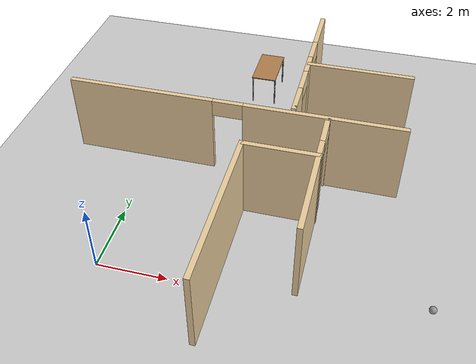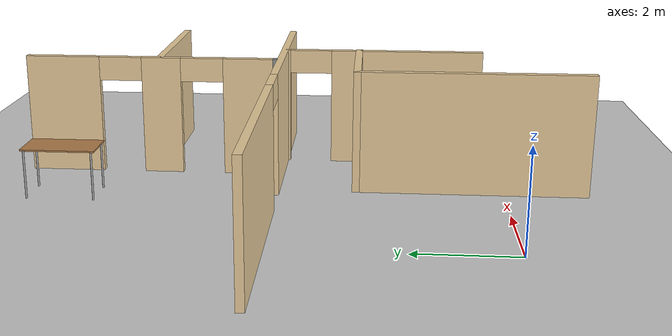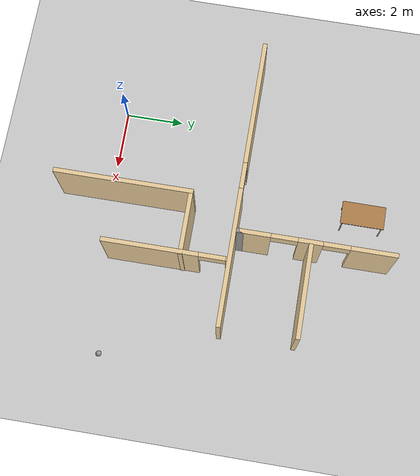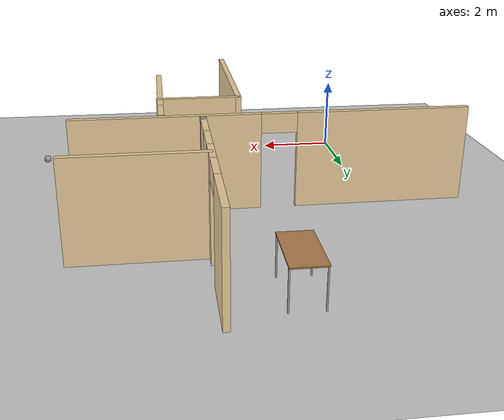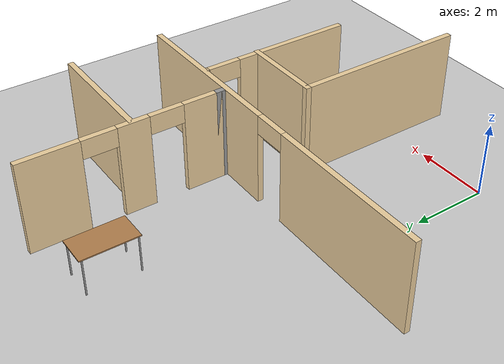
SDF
<sdf version="1.6">
 <world name="default">
  <model name="ground_plane">
   <static>1</static>
   <link name="link">
    <collision name="collision">
     <geometry><plane><normal>0 0 1</normal><size>100 100</size></plane></geometry>
     <surface>
      <contact><collide_bitmask>65535</collide_bitmask></contact>
      <friction><ode><mu>100</mu><mu2>50</mu2></ode></friction>
     </surface>
    </collision>
    <visual name="visual">
     <cast_shadows>0</cast_shadows>
     <geometry><plane><normal>0 0 1</normal><size>100 100</size></plane></geometry>
     <material>
      <script><uri>file://media/materials/scripts/gazebo.material</uri><name>Gazebo/Grey</name></script>
     </material>
    </visual>
   </link>
  </model>
  <model name="table">
   <static>1</static>
   <link name="link">
    <collision name="surface">
     <pose>0 0 1 0 -0 0</pose>
     <geometry><box><size>1.5 0.8 0.03</size></box></geometry>
     <surface><friction><ode><mu>0.6</mu><mu2>0.6</mu2></ode></friction></surface>
    </collision>
    <visual name="visual1">
     <pose>0 0 1 0 -0 0</pose>
     <geometry><box><size>1.5 0.8 0.03</size></box></geometry>
     <material>
      <script><uri>file://media/materials/scripts/gazebo.material</uri><name>Gazebo/Wood</name></script>
     </material>
    </visual>
    <collision name="front_left_leg">
     <pose>0.68 0.38 0.5 0 -0 0</pose>
     <geometry><cylinder><radius>0.02</radius><length>1</length></cylinder></geometry>
    </collision>
    <visual name="front_left_leg">
     <pose>0.68 0.38 0.5 0 -0 0</pose>
     <geometry><cylinder><radius>0.02</radius><length>1</length></cylinder></geometry>
     <material>
      <script><uri>file://media/materials/scripts/gazebo.material</uri><name>Gazebo/Grey</name></script>
     </material>
    </visual>
    <collision name="front_right_leg">
     <pose>0.68 -0.38 0.5 0 -0 0</pose>
     <geometry><cylinder><radius>0.02</radius><length>1</length></cylinder></geometry>
    </collision>
    <visual name="front_right_leg">
     <pose>0.68 -0.38 0.5 0 -0 0</pose>
     <geometry><cylinder><radius>0.02</radius><length>1</length></cylinder></geometry>
     <material>
      <script><uri>file://media/materials/scripts/gazebo.material</uri><name>Gazebo/Grey</name></script>
     </material>
    </visual>
    <collision name="back_right_leg">
     <pose>-0.68 -0.38 0.5 0 -0 0</pose>
     <geometry><cylinder><radius>0.02</radius><length>1</length></cylinder></geometry>
    </collision>
    <visual name="back_right_leg">
     <pose>-0.68 -0.38 0.5 0 -0 0</pose>
     <geometry><cylinder><radius>0.02</radius><length>1</length></cylinder></geometry>
     <material>
      <script><uri>file://media/materials/scripts/gazebo.material</uri><name>Gazebo/Grey</name></script>
     </material>
    </visual>
    <collision name="back_left_leg">
     <pose>-0.68 0.38 0.5 0 -0 0</pose>
     <geometry><cylinder><radius>0.02</radius><length>1</length></cylinder></geometry>
    </collision>
    <visual name="back_left_leg">
     <pose>-0.68 0.38 0.5 0 -0 0</pose>
     <geometry><cylinder><radius>0.02</radius><length>1</length></cylinder></geometry>
     <material>
      <script><uri>file://media/materials/scripts/gazebo.material</uri><name>Gazebo/Grey</name></script>
     </material>
    </visual>
   </link>
   <pose>2.66975 8.85523 0 0 -0 1.57</pose>
  </model>
  <model name="AutowayTower">
   <link name="Wall_10">
    <pose>-4.59574 2.54039 0 0 0 -1.5708</pose>
    <visual name="Wall_10_Visual_0">
     <pose>-2.65394 0 1.25 0 -0 0</pose>
     <geometry><box><size>4.69212 0.15 2.5</size></box></geometry>
     <material>
      <script><uri>file://media/materials/scripts/gazebo.material</uri><name>Gazebo/Grey</name></script>
      <ambient>0.921569 0.807843 0.615686 1</ambient>
      <shader type="pixel"/>
      <diffuse>0.7 0.7 0.7 1</diffuse>
      <specular>0.01 0.01 0.01 1</specular>
      <emissive>0 0 0 1</emissive>
     </material>
     <meta><layer>0</layer></meta>
    </visual>
    <visual name="Wall_10_Visual_1">
     <pose>2.79606 0 1.25 0 -0 0</pose>
     <geometry><box><size>4.40788 0.15 2.5</size></box></geometry>
     <material>
      <script><uri>file://media/materials/scripts/gazebo.material</uri><name>Gazebo/Grey</name></script>
      <ambient>0.921569 0.807843 0.615686 1</ambient>
      <shader type="pixel"/>
      <diffuse>0.7 0.7 0.7 1</diffuse>
      <specular>0.01 0.01 0.01 1</specular>
      <emissive>0 0 0 1</emissive>
     </material>
     <meta><layer>0</layer></meta>
    </visual>
    <visual name="Wall_10_Visual_2">
     <pose>0.142117 0 2.25 0 -0 0</pose>
     <geometry><box><size>0.9 0.15 0.5</size></box></geometry>
     <material>
      <script><uri>file://media/materials/scripts/gazebo.material</uri><name>Gazebo/Grey</name></script>
      <ambient>0.921569 0.807843 0.615686 1</ambient>
      <shader type="pixel"/>
      <diffuse>0.7 0.7 0.7 1</diffuse>
      <specular>0.01 0.01 0.01 1</specular>
      <emissive>0 0 0 1</emissive>
     </material>
     <meta><layer>0</layer></meta>
    </visual>
    <collision name="Wall_10_Collision_0">
     <pose>-2.65394 0 1.25 0 -0 0</pose>
     <geometry><box><size>4.69212 0.15 2.5</size></box></geometry>
     <surface>
      <friction>
       <ode><mu>1</mu><mu2>1</mu2><fdir1>0 0 0</fdir1><slip1>0</slip1><slip2>0</slip2></ode>
       <torsional>
        <coefficient>1</coefficient>
        <patch_radius>0</patch_radius>
        <surface_radius>0</surface_radius>
        <use_patch_radius>1</use_patch_radius>
        <ode><slip>0</slip></ode>
       </torsional>
      </friction>
      <bounce><restitution_coefficient>0</restitution_coefficient><threshold>1e+06</threshold></bounce>
      <contact>
       <collide_without_contact>0</collide_without_contact>
       <collide_without_contact_bitmask>1</collide_without_contact_bitmask>
       <collide_bitmask>1</collide_bitmask>
       <ode>
        <soft_cfm>0</soft_cfm>
        <soft_erp>0.2</soft_erp>
        <kp>1e+13</kp>
        <kd>1</kd>
        <max_vel>0.01</max_vel>
        <min_depth>0</min_depth>
       </ode>
       <bullet>
        <split_impulse>1</split_impulse>
        <split_impulse_penetration_threshold>-0.01</split_impulse_penetration_threshold>
        <soft_cfm>0</soft_cfm>
        <soft_erp>0.2</soft_erp>
        <kp>1e+13</kp>
        <kd>1</kd>
       </bullet>
      </contact>
     </surface>
    </collision>
    <collision name="Wall_10_Collision_1">
     <pose>2.79606 0 1.25 0 -0 0</pose>
     <geometry><box><size>4.40788 0.15 2.5</size></box></geometry>
     <surface>
      <friction>
       <ode><mu>1</mu><mu2>1</mu2><fdir1>0 0 0</fdir1><slip1>0</slip1><slip2>0</slip2></ode>
       <torsional>
        <coefficient>1</coefficient>
        <patch_radius>0</patch_radius>
        <surface_radius>0</surface_radius>
        <use_patch_radius>1</use_patch_radius>
        <ode><slip>0</slip></ode>
       </torsional>
      </friction>
      <bounce><restitution_coefficient>0</restitution_coefficient><threshold>1e+06</threshold></bounce>
      <contact>
       <collide_without_contact>0</collide_without_contact>
       <collide_without_contact_bitmask>1</collide_without_contact_bitmask>
       <collide_bitmask>1</collide_bitmask>
       <ode>
        <soft_cfm>0</soft_cfm>
        <soft_erp>0.2</soft_erp>
        <kp>1e+13</kp>
        <kd>1</kd>
        <max_vel>0.01</max_vel>
        <min_depth>0</min_depth>
       </ode>
       <bullet>
        <split_impulse>1</split_impulse>
        <split_impulse_penetration_threshold>-0.01</split_impulse_penetration_threshold>
        <soft_cfm>0</soft_cfm>
        <soft_erp>0.2</soft_erp>
        <kp>1e+13</kp>
        <kd>1</kd>
       </bullet>
      </contact>
     </surface>
    </collision>
    <collision name="Wall_10_Collision_2">
     <pose>0.142117 0 2.25 0 -0 0</pose>
     <geometry><box><size>0.9 0.15 0.5</size></box></geometry>
     <surface>
      <friction>
       <ode><mu>1</mu><mu2>1</mu2><fdir1>0 0 0</fdir1><slip1>0</slip1><slip2>0</slip2></ode>
       <torsional>
        <coefficient>1</coefficient>
        <patch_radius>0</patch_radius>
        <surface_radius>0</surface_radius>
        <use_patch_radius>1</use_patch_radius>
        <ode><slip>0</slip></ode>
       </torsional>
      </friction>
      <bounce><restitution_coefficient>0</restitution_coefficient><threshold>1e+06</threshold></bounce>
      <contact>
       <collide_without_contact>0</collide_without_contact>
       <collide_without_contact_bitmask>1</collide_without_contact_bitmask>
       <collide_bitmask>1</collide_bitmask>
       <ode>
        <soft_cfm>0</soft_cfm>
        <soft_erp>0.2</soft_erp>
        <kp>1e+13</kp>
        <kd>1</kd>
        <max_vel>0.01</max_vel>
        <min_depth>0</min_depth>
       </ode>
       <bullet>
        <split_impulse>1</split_impulse>
        <split_impulse_penetration_threshold>-0.01</split_impulse_penetration_threshold>
        <soft_cfm>0</soft_cfm>
        <soft_erp>0.2</soft_erp>
        <kp>1e+13</kp>
        <kd>1</kd>
       </bullet>
      </contact>
     </surface>
    </collision>
   </link>
   <link name="Wall_18">
    <pose>-2.44812 5.29695 0 0 -0 3.14159</pose>
    <visual name="Wall_18_Visual_0">
     <pose>-0.498856 0 1.25 0 -0 0</pose>
     <geometry><box><size>3.25229 0.15 2.5</size></box></geometry>
     <material>
      <script><uri>file://media/materials/scripts/gazebo.material</uri><name>Gazebo/Grey</name></script>
      <ambient>0.921569 0.807843 0.615686 1</ambient>
      <shader type="pixel"/>
      <diffuse>0.7 0.7 0.7 1</diffuse>
      <specular>0.01 0.01 0.01 1</specular>
      <emissive>0 0 0 1</emissive>
     </material>
     <meta><layer>0</layer></meta>
    </visual>
    <visual name="Wall_18_Visual_1">
     <pose>2.07614 0 1.25 0 -0 0</pose>
     <geometry><box><size>0.097712 0.15 2.5</size></box></geometry>
     <material>
      <script><uri>file://media/materials/scripts/gazebo.material</uri><name>Gazebo/Grey</name></script>
      <ambient>0.921569 0.807843 0.615686 1</ambient>
      <shader type="pixel"/>
      <diffuse>0.7 0.7 0.7 1</diffuse>
      <specular>0.01 0.01 0.01 1</specular>
      <emissive>0 0 0 1</emissive>
     </material>
     <meta><layer>0</layer></meta>
    </visual>
    <visual name="Wall_18_Visual_2">
     <pose>1.57729 0 2.25 0 -0 0</pose>
     <geometry><box><size>0.9 0.15 0.5</size></box></geometry>
     <material>
      <script><uri>file://media/materials/scripts/gazebo.material</uri><name>Gazebo/Grey</name></script>
      <ambient>0.921569 0.807843 0.615686 1</ambient>
      <shader type="pixel"/>
      <diffuse>0.7 0.7 0.7 1</diffuse>
      <specular>0.01 0.01 0.01 1</specular>
      <emissive>0 0 0 1</emissive>
     </material>
     <meta><layer>0</layer></meta>
    </visual>
    <collision name="Wall_18_Collision_0">
     <pose>-0.498856 0 1.25 0 -0 0</pose>
     <geometry><box><size>3.25229 0.15 2.5</size></box></geometry>
     <surface>
      <friction>
       <ode><mu>1</mu><mu2>1</mu2><fdir1>0 0 0</fdir1><slip1>0</slip1><slip2>0</slip2></ode>
       <torsional>
        <coefficient>1</coefficient>
        <patch_radius>0</patch_radius>
        <surface_radius>0</surface_radius>
        <use_patch_radius>1</use_patch_radius>
        <ode><slip>0</slip></ode>
       </torsional>
      </friction>
      <bounce><restitution_coefficient>0</restitution_coefficient><threshold>1e+06</threshold></bounce>
      <contact>
       <collide_without_contact>0</collide_without_contact>
       <collide_without_contact_bitmask>1</collide_without_contact_bitmask>
       <collide_bitmask>1</collide_bitmask>
       <ode>
        <soft_cfm>0</soft_cfm>
        <soft_erp>0.2</soft_erp>
        <kp>1e+13</kp>
        <kd>1</kd>
        <max_vel>0.01</max_vel>
        <min_depth>0</min_depth>
       </ode>
       <bullet>
        <split_impulse>1</split_impulse>
        <split_impulse_penetration_threshold>-0.01</split_impulse_penetration_threshold>
        <soft_cfm>0</soft_cfm>
        <soft_erp>0.2</soft_erp>
        <kp>1e+13</kp>
        <kd>1</kd>
       </bullet>
      </contact>
     </surface>
    </collision>
    <collision name="Wall_18_Collision_1">
     <pose>2.07614 0 1.25 0 -0 0</pose>
     <geometry><box><size>0.097712 0.15 2.5</size></box></geometry>
     <surface>
      <friction>
       <ode><mu>1</mu><mu2>1</mu2><fdir1>0 0 0</fdir1><slip1>0</slip1><slip2>0</slip2></ode>
       <torsional>
        <coefficient>1</coefficient>
        <patch_radius>0</patch_radius>
        <surface_radius>0</surface_radius>
        <use_patch_radius>1</use_patch_radius>
        <ode><slip>0</slip></ode>
       </torsional>
      </friction>
      <bounce><restitution_coefficient>0</restitution_coefficient><threshold>1e+06</threshold></bounce>
      <contact>
       <collide_without_contact>0</collide_without_contact>
       <collide_without_contact_bitmask>1</collide_without_contact_bitmask>
       <collide_bitmask>1</collide_bitmask>
       <ode>
        <soft_cfm>0</soft_cfm>
        <soft_erp>0.2</soft_erp>
        <kp>1e+13</kp>
        <kd>1</kd>
        <max_vel>0.01</max_vel>
        <min_depth>0</min_depth>
       </ode>
       <bullet>
        <split_impulse>1</split_impulse>
        <split_impulse_penetration_threshold>-0.01</split_impulse_penetration_threshold>
        <soft_cfm>0</soft_cfm>
        <soft_erp>0.2</soft_erp>
        <kp>1e+13</kp>
        <kd>1</kd>
       </bullet>
      </contact>
     </surface>
    </collision>
    <collision name="Wall_18_Collision_2">
     <pose>1.57729 0 2.25 0 -0 0</pose>
     <geometry><box><size>0.9 0.15 0.5</size></box></geometry>
     <surface>
      <friction>
       <ode><mu>1</mu><mu2>1</mu2><fdir1>0 0 0</fdir1><slip1>0</slip1><slip2>0</slip2></ode>
       <torsional>
        <coefficient>1</coefficient>
        <patch_radius>0</patch_radius>
        <surface_radius>0</surface_radius>
        <use_patch_radius>1</use_patch_radius>
        <ode><slip>0</slip></ode>
       </torsional>
      </friction>
      <bounce><restitution_coefficient>0</restitution_coefficient><threshold>1e+06</threshold></bounce>
      <contact>
       <collide_without_contact>0</collide_without_contact>
       <collide_without_contact_bitmask>1</collide_without_contact_bitmask>
       <collide_bitmask>1</collide_bitmask>
       <ode>
        <soft_cfm>0</soft_cfm>
        <soft_erp>0.2</soft_erp>
        <kp>1e+13</kp>
        <kd>1</kd>
        <max_vel>0.01</max_vel>
        <min_depth>0</min_depth>
       </ode>
       <bullet>
        <split_impulse>1</split_impulse>
        <split_impulse_penetration_threshold>-0.01</split_impulse_penetration_threshold>
        <soft_cfm>0</soft_cfm>
        <soft_erp>0.2</soft_erp>
        <kp>1e+13</kp>
        <kd>1</kd>
       </bullet>
      </contact>
     </surface>
    </collision>
   </link>
   <link name="Wall_55">
    <pose>-0.677714 3.21927 0 0 -0 3.14159</pose>
    <visual name="Wall_55_Visual">
     <pose>0 0 1.25 0 -0 0</pose>
     <geometry><box><size>4.75 0.15 2.5</size></box></geometry>
     <material>
      <script><uri>file://media/materials/scripts/gazebo.material</uri><name>Gazebo/Grey</name></script>
      <ambient>0.921569 0.807843 0.615686 1</ambient>
      <shader type="pixel"/>
      <diffuse>0.7 0.7 0.7 1</diffuse>
      <specular>0.01 0.01 0.01 1</specular>
      <emissive>0 0 0 1</emissive>
     </material>
     <meta><layer>0</layer></meta>
    </visual>
    <collision name="Wall_55_Collision">
     <pose>0 0 1.25 0 -0 0</pose>
     <geometry><box><size>4.75 0.15 2.5</size></box></geometry>
     <surface>
      <friction>
       <ode><mu>1</mu><mu2>1</mu2><fdir1>0 0 0</fdir1><slip1>0</slip1><slip2>0</slip2></ode>
       <torsional>
        <coefficient>1</coefficient>
        <patch_radius>0</patch_radius>
        <surface_radius>0</surface_radius>
        <use_patch_radius>1</use_patch_radius>
        <ode><slip>0</slip></ode>
       </torsional>
      </friction>
      <bounce><restitution_coefficient>0</restitution_coefficient><threshold>1e+06</threshold></bounce>
      <contact>
       <collide_without_contact>0</collide_without_contact>
       <collide_without_contact_bitmask>1</collide_without_contact_bitmask>
       <collide_bitmask>1</collide_bitmask>
       <ode>
        <soft_cfm>0</soft_cfm>
        <soft_erp>0.2</soft_erp>
        <kp>1e+13</kp>
        <kd>1</kd>
        <max_vel>0.01</max_vel>
        <min_depth>0</min_depth>
       </ode>
       <bullet>
        <split_impulse>1</split_impulse>
        <split_impulse_penetration_threshold>-0.01</split_impulse_penetration_threshold>
        <soft_cfm>0</soft_cfm>
        <soft_erp>0.2</soft_erp>
        <kp>1e+13</kp>
        <kd>1</kd>
       </bullet>
      </contact>
     </surface>
    </collision>
   </link>
   <link name="Wall_56">
    <pose>-2.97771 4.26927 0 0 -0 1.5708</pose>
    <visual name="Wall_56_Visual">
     <pose>0 0 1.25 0 -0 0</pose>
     <geometry><box><size>2.25 0.15 2.5</size></box></geometry>
     <material>
      <script><uri>file://media/materials/scripts/gazebo.material</uri><name>Gazebo/Grey</name></script>
      <ambient>0.921569 0.807843 0.615686 1</ambient>
      <shader type="pixel"/>
      <diffuse>0.7 0.7 0.7 1</diffuse>
      <specular>0.01 0.01 0.01 1</specular>
      <emissive>0 0 0 1</emissive>
     </material>
     <meta><layer>0</layer></meta>
    </visual>
    <collision name="Wall_56_Collision">
     <pose>0 0 1.25 0 -0 0</pose>
     <geometry><box><size>2.25 0.15 2.5</size></box></geometry>
     <surface>
      <friction>
       <ode><mu>1</mu><mu2>1</mu2><fdir1>0 0 0</fdir1><slip1>0</slip1><slip2>0</slip2></ode>
       <torsional>
        <coefficient>1</coefficient>
        <patch_radius>0</patch_radius>
        <surface_radius>0</surface_radius>
        <use_patch_radius>1</use_patch_radius>
        <ode><slip>0</slip></ode>
       </torsional>
      </friction>
      <bounce><restitution_coefficient>0</restitution_coefficient><threshold>1e+06</threshold></bounce>
      <contact>
       <collide_without_contact>0</collide_without_contact>
       <collide_without_contact_bitmask>1</collide_without_contact_bitmask>
       <collide_bitmask>1</collide_bitmask>
       <ode>
        <soft_cfm>0</soft_cfm>
        <soft_erp>0.2</soft_erp>
        <kp>1e+13</kp>
        <kd>1</kd>
        <max_vel>0.01</max_vel>
        <min_depth>0</min_depth>
       </ode>
       <bullet>
        <split_impulse>1</split_impulse>
        <split_impulse_penetration_threshold>-0.01</split_impulse_penetration_threshold>
        <soft_cfm>0</soft_cfm>
        <soft_erp>0.2</soft_erp>
        <kp>1e+13</kp>
        <kd>1</kd>
       </bullet>
      </contact>
     </surface>
    </collision>
   </link>
   <link name="Wall_72">
    <pose>-7.38714 4.28719 0 0 -0 0</pose>
    <visual name="Wall_72_Visual_0">
     <pose>-1.8418 0 1.25 0 -0 0</pose>
     <geometry><box><size>1.5664 0.15 2.5</size></box></geometry>
     <material>
      <script><uri>file://media/materials/scripts/gazebo.material</uri><name>Gazebo/Grey</name></script>
      <ambient>0.921569 0.807843 0.615686 1</ambient>
      <shader type="pixel"/>
      <diffuse>0.7 0.7 0.7 1</diffuse>
      <specular>0.01 0.01 0.01 1</specular>
      <emissive>0 0 0 1</emissive>
     </material>
     <meta><layer>0</layer></meta>
    </visual>
    <visual name="Wall_72_Visual_1">
     <pose>0.257155 0 1.25 0 -0 0</pose>
     <geometry><box><size>0.831517 0.15 2.5</size></box></geometry>
     <material>
      <script><uri>file://media/materials/scripts/gazebo.material</uri><name>Gazebo/Grey</name></script>
      <ambient>0.921569 0.807843 0.615686 1</ambient>
      <shader type="pixel"/>
      <diffuse>0.7 0.7 0.7 1</diffuse>
      <specular>0.01 0.01 0.01 1</specular>
      <emissive>0 0 0 1</emissive>
     </material>
     <meta><layer>0</layer></meta>
    </visual>
    <visual name="Wall_72_Visual_2">
     <pose>2.09896 0 1.25 0 -0 0</pose>
     <geometry><box><size>1.05209 0.15 2.5</size></box></geometry>
     <material>
      <script><uri>file://media/materials/scripts/gazebo.material</uri><name>Gazebo/Grey</name></script>
      <ambient>0.921569 0.807843 0.615686 1</ambient>
      <shader type="pixel"/>
      <diffuse>0.7 0.7 0.7 1</diffuse>
      <specular>0.01 0.01 0.01 1</specular>
      <emissive>0 0 0 1</emissive>
     </material>
     <meta><layer>0</layer></meta>
    </visual>
    <visual name="Wall_72_Visual_3">
     <pose>-0.608603 0 2.25 0 -0 0</pose>
     <geometry><box><size>0.9 0.15 0.5</size></box></geometry>
     <material>
      <script><uri>file://media/materials/scripts/gazebo.material</uri><name>Gazebo/Grey</name></script>
      <ambient>0.921569 0.807843 0.615686 1</ambient>
      <shader type="pixel"/>
      <diffuse>0.7 0.7 0.7 1</diffuse>
      <specular>0.01 0.01 0.01 1</specular>
      <emissive>0 0 0 1</emissive>
     </material>
     <meta><layer>0</layer></meta>
    </visual>
    <visual name="Wall_72_Visual_4">
     <pose>1.12291 0 2.25 0 -0 0</pose>
     <geometry><box><size>0.9 0.15 0.5</size></box></geometry>
     <material>
      <script><uri>file://media/materials/scripts/gazebo.material</uri><name>Gazebo/Grey</name></script>
      <ambient>0.921569 0.807843 0.615686 1</ambient>
      <shader type="pixel"/>
      <diffuse>0.7 0.7 0.7 1</diffuse>
      <specular>0.01 0.01 0.01 1</specular>
      <emissive>0 0 0 1</emissive>
     </material>
     <meta><layer>0</layer></meta>
    </visual>
    <collision name="Wall_72_Collision_0">
     <pose>-1.8418 0 1.25 0 -0 0</pose>
     <geometry><box><size>1.5664 0.15 2.5</size></box></geometry>
     <surface>
      <friction>
       <ode><mu>1</mu><mu2>1</mu2><fdir1>0 0 0</fdir1><slip1>0</slip1><slip2>0</slip2></ode>
       <torsional>
        <coefficient>1</coefficient>
        <patch_radius>0</patch_radius>
        <surface_radius>0</surface_radius>
        <use_patch_radius>1</use_patch_radius>
        <ode><slip>0</slip></ode>
       </torsional>
      </friction>
      <bounce><restitution_coefficient>0</restitution_coefficient><threshold>1e+06</threshold></bounce>
      <contact>
       <collide_without_contact>0</collide_without_contact>
       <collide_without_contact_bitmask>1</collide_without_contact_bitmask>
       <collide_bitmask>1</collide_bitmask>
       <ode>
        <soft_cfm>0</soft_cfm>
        <soft_erp>0.2</soft_erp>
        <kp>1e+13</kp>
        <kd>1</kd>
        <max_vel>0.01</max_vel>
        <min_depth>0</min_depth>
       </ode>
       <bullet>
        <split_impulse>1</split_impulse>
        <split_impulse_penetration_threshold>-0.01</split_impulse_penetration_threshold>
        <soft_cfm>0</soft_cfm>
        <soft_erp>0.2</soft_erp>
        <kp>1e+13</kp>
        <kd>1</kd>
       </bullet>
      </contact>
     </surface>
    </collision>
    <collision name="Wall_72_Collision_1">
     <pose>0.257155 0 1.25 0 -0 0</pose>
     <geometry><box><size>0.831517 0.15 2.5</size></box></geometry>
     <surface>
      <friction>
       <ode><mu>1</mu><mu2>1</mu2><fdir1>0 0 0</fdir1><slip1>0</slip1><slip2>0</slip2></ode>
       <torsional>
        <coefficient>1</coefficient>
        <patch_radius>0</patch_radius>
        <surface_radius>0</surface_radius>
        <use_patch_radius>1</use_patch_radius>
        <ode><slip>0</slip></ode>
       </torsional>
      </friction>
      <bounce><restitution_coefficient>0</restitution_coefficient><threshold>1e+06</threshold></bounce>
      <contact>
       <collide_without_contact>0</collide_without_contact>
       <collide_without_contact_bitmask>1</collide_without_contact_bitmask>
       <collide_bitmask>1</collide_bitmask>
       <ode>
        <soft_cfm>0</soft_cfm>
        <soft_erp>0.2</soft_erp>
        <kp>1e+13</kp>
        <kd>1</kd>
        <max_vel>0.01</max_vel>
        <min_depth>0</min_depth>
       </ode>
       <bullet>
        <split_impulse>1</split_impulse>
        <split_impulse_penetration_threshold>-0.01</split_impulse_penetration_threshold>
        <soft_cfm>0</soft_cfm>
        <soft_erp>0.2</soft_erp>
        <kp>1e+13</kp>
        <kd>1</kd>
       </bullet>
      </contact>
     </surface>
    </collision>
    <collision name="Wall_72_Collision_2">
     <pose>2.09896 0 1.25 0 -0 0</pose>
     <geometry><box><size>1.05209 0.15 2.5</size></box></geometry>
     <surface>
      <friction>
       <ode><mu>1</mu><mu2>1</mu2><fdir1>0 0 0</fdir1><slip1>0</slip1><slip2>0</slip2></ode>
       <torsional>
        <coefficient>1</coefficient>
        <patch_radius>0</patch_radius>
        <surface_radius>0</surface_radius>
        <use_patch_radius>1</use_patch_radius>
        <ode><slip>0</slip></ode>
       </torsional>
      </friction>
      <bounce><restitution_coefficient>0</restitution_coefficient><threshold>1e+06</threshold></bounce>
      <contact>
       <collide_without_contact>0</collide_without_contact>
       <collide_without_contact_bitmask>1</collide_without_contact_bitmask>
       <collide_bitmask>1</collide_bitmask>
       <ode>
        <soft_cfm>0</soft_cfm>
        <soft_erp>0.2</soft_erp>
        <kp>1e+13</kp>
        <kd>1</kd>
        <max_vel>0.01</max_vel>
        <min_depth>0</min_depth>
       </ode>
       <bullet>
        <split_impulse>1</split_impulse>
        <split_impulse_penetration_threshold>-0.01</split_impulse_penetration_threshold>
        <soft_cfm>0</soft_cfm>
        <soft_erp>0.2</soft_erp>
        <kp>1e+13</kp>
        <kd>1</kd>
       </bullet>
      </contact>
     </surface>
    </collision>
    <collision name="Wall_72_Collision_3">
     <pose>-0.608603 0 2.25 0 -0 0</pose>
     <geometry><box><size>0.9 0.15 0.5</size></box></geometry>
     <surface>
      <friction>
       <ode><mu>1</mu><mu2>1</mu2><fdir1>0 0 0</fdir1><slip1>0</slip1><slip2>0</slip2></ode>
       <torsional>
        <coefficient>1</coefficient>
        <patch_radius>0</patch_radius>
        <surface_radius>0</surface_radius>
        <use_patch_radius>1</use_patch_radius>
        <ode><slip>0</slip></ode>
       </torsional>
      </friction>
      <bounce><restitution_coefficient>0</restitution_coefficient><threshold>1e+06</threshold></bounce>
      <contact>
       <collide_without_contact>0</collide_without_contact>
       <collide_without_contact_bitmask>1</collide_without_contact_bitmask>
       <collide_bitmask>1</collide_bitmask>
       <ode>
        <soft_cfm>0</soft_cfm>
        <soft_erp>0.2</soft_erp>
        <kp>1e+13</kp>
        <kd>1</kd>
        <max_vel>0.01</max_vel>
        <min_depth>0</min_depth>
       </ode>
       <bullet>
        <split_impulse>1</split_impulse>
        <split_impulse_penetration_threshold>-0.01</split_impulse_penetration_threshold>
        <soft_cfm>0</soft_cfm>
        <soft_erp>0.2</soft_erp>
        <kp>1e+13</kp>
        <kd>1</kd>
       </bullet>
      </contact>
     </surface>
    </collision>
    <collision name="Wall_72_Collision_4">
     <pose>1.12291 0 2.25 0 -0 0</pose>
     <geometry><box><size>0.9 0.15 0.5</size></box></geometry>
     <surface>
      <friction>
       <ode><mu>1</mu><mu2>1</mu2><fdir1>0 0 0</fdir1><slip1>0</slip1><slip2>0</slip2></ode>
       <torsional>
        <coefficient>1</coefficient>
        <patch_radius>0</patch_radius>
        <surface_radius>0</surface_radius>
        <use_patch_radius>1</use_patch_radius>
        <ode><slip>0</slip></ode>
       </torsional>
      </friction>
      <bounce><restitution_coefficient>0</restitution_coefficient><threshold>1e+06</threshold></bounce>
      <contact>
       <collide_without_contact>0</collide_without_contact>
       <collide_without_contact_bitmask>1</collide_without_contact_bitmask>
       <collide_bitmask>1</collide_bitmask>
       <ode>
        <soft_cfm>0</soft_cfm>
        <soft_erp>0.2</soft_erp>
        <kp>1e+13</kp>
        <kd>1</kd>
        <max_vel>0.01</max_vel>
        <min_depth>0</min_depth>
       </ode>
       <bullet>
        <split_impulse>1</split_impulse>
        <split_impulse_penetration_threshold>-0.01</split_impulse_penetration_threshold>
        <soft_cfm>0</soft_cfm>
        <soft_erp>0.2</soft_erp>
        <kp>1e+13</kp>
        <kd>1</kd>
       </bullet>
      </contact>
     </surface>
    </collision>
   </link>
   <link name="Wall_73">
    <pose>-4.78714 4.28719 0 0 -0 0</pose>
    <visual name="Wall_73_Visual">
     <pose>0 0 1.25 0 -0 0</pose>
     <geometry><box><size>0.25 0.15 2.5</size></box></geometry>
     <material>
      <script><uri>file://media/materials/scripts/gazebo.material</uri><name>Gazebo/Grey</name></script>
      <ambient>1 1 1 1</ambient>
      <shader type="pixel"/>
      <diffuse>0.7 0.7 0.7 1</diffuse>
      <specular>0.01 0.01 0.01 1</specular>
      <emissive>0 0 0 1</emissive>
     </material>
     <meta><layer>0</layer></meta>
    </visual>
    <collision name="Wall_73_Collision">
     <pose>0 0 1.25 0 -0 0</pose>
     <geometry><box><size>0.25 0.15 2.5</size></box></geometry>
     <surface>
      <friction>
       <ode><mu>1</mu><mu2>1</mu2><fdir1>0 0 0</fdir1><slip1>0</slip1><slip2>0</slip2></ode>
       <torsional>
        <coefficient>1</coefficient>
        <patch_radius>0</patch_radius>
        <surface_radius>0</surface_radius>
        <use_patch_radius>1</use_patch_radius>
        <ode><slip>0</slip></ode>
       </torsional>
      </friction>
      <bounce><restitution_coefficient>0</restitution_coefficient><threshold>1e+06</threshold></bounce>
      <contact>
       <collide_without_contact>0</collide_without_contact>
       <collide_without_contact_bitmask>1</collide_without_contact_bitmask>
       <collide_bitmask>1</collide_bitmask>
       <ode>
        <soft_cfm>0</soft_cfm>
        <soft_erp>0.2</soft_erp>
        <kp>1e+13</kp>
        <kd>1</kd>
        <max_vel>0.01</max_vel>
        <min_depth>0</min_depth>
       </ode>
       <bullet>
        <split_impulse>1</split_impulse>
        <split_impulse_penetration_threshold>-0.01</split_impulse_penetration_threshold>
        <soft_cfm>0</soft_cfm>
        <soft_erp>0.2</soft_erp>
        <kp>1e+13</kp>
        <kd>1</kd>
       </bullet>
      </contact>
     </surface>
    </collision>
   </link>
   <link name="Wall_75">
    <pose>-7.15622 5.88541 0 0 0 -1.5708</pose>
    <visual name="Wall_75_Visual">
     <pose>0 0 1.25 0 -0 0</pose>
     <geometry><box><size>3.25 0.15 2.5</size></box></geometry>
     <material>
      <script><uri>file://media/materials/scripts/gazebo.material</uri><name>Gazebo/Grey</name></script>
      <ambient>0.921569 0.807843 0.615686 1</ambient>
      <shader type="pixel"/>
      <diffuse>0.7 0.7 0.7 1</diffuse>
      <specular>0.01 0.01 0.01 1</specular>
      <emissive>0 0 0 1</emissive>
     </material>
     <meta><layer>0</layer></meta>
    </visual>
    <collision name="Wall_75_Collision">
     <pose>0 0 1.25 0 -0 0</pose>
     <geometry><box><size>3.25 0.15 2.5</size></box></geometry>
     <surface>
      <friction>
       <ode><mu>1</mu><mu2>1</mu2><fdir1>0 0 0</fdir1><slip1>0</slip1><slip2>0</slip2></ode>
       <torsional>
        <coefficient>1</coefficient>
        <patch_radius>0</patch_radius>
        <surface_radius>0</surface_radius>
        <use_patch_radius>1</use_patch_radius>
        <ode><slip>0</slip></ode>
       </torsional>
      </friction>
      <bounce><restitution_coefficient>0</restitution_coefficient><threshold>1e+06</threshold></bounce>
      <contact>
       <collide_without_contact>0</collide_without_contact>
       <collide_without_contact_bitmask>1</collide_without_contact_bitmask>
       <collide_bitmask>1</collide_bitmask>
       <ode>
        <soft_cfm>0</soft_cfm>
        <soft_erp>0.2</soft_erp>
        <kp>1e+13</kp>
        <kd>1</kd>
        <max_vel>0.01</max_vel>
        <min_depth>0</min_depth>
       </ode>
       <bullet>
        <split_impulse>1</split_impulse>
        <split_impulse_penetration_threshold>-0.01</split_impulse_penetration_threshold>
        <soft_cfm>0</soft_cfm>
        <soft_erp>0.2</soft_erp>
        <kp>1e+13</kp>
        <kd>1</kd>
       </bullet>
      </contact>
     </surface>
    </collision>
   </link>
   <static>1</static>
   <pose>3e-06 0 0 0 0 -1.57</pose>
  </model>
  <model name="my_ball">
   <link name="link_0">
    <inertial>
     <mass>1</mass>
     <inertia><ixx>0.1</ixx><ixy>0</ixy><ixz>0</ixz><iyy>0.1</iyy><iyz>0</iyz><izz>0.1</izz></inertia>
    </inertial>
    <visual name="visual">
     <geometry><sphere><radius>0.1</radius></sphere></geometry>
     <material>
      <lighting>1</lighting>
      <script><uri>file://media/materials/scripts/gazebo.material</uri><name>Gazebo/Grey</name></script>
      <shader type="pixel"><normal_map>__default__</normal_map></shader>
      <ambient>1 1 1 1</ambient>
      <diffuse>1 1 1 1</diffuse>
      <specular>1 1 1 1</specular>
      <emissive>1 1 1 1</emissive>
     </material>
    </visual>
    <collision name="collision">
     <geometry><sphere><radius>0.1</radius></sphere></geometry>
     <surface>
      <friction>
       <ode><mu>1</mu><mu2>1</mu2><fdir1>0 0 0</fdir1><slip1>0</slip1><slip2>0</slip2></ode>
       <torsional>
        <coefficient>1</coefficient>
        <patch_radius>0</patch_radius>
        <surface_radius>0</surface_radius>
        <use_patch_radius>1</use_patch_radius>
        <ode><slip>0</slip></ode>
       </torsional>
      </friction>
      <bounce><restitution_coefficient>0</restitution_coefficient><threshold>1e+06</threshold></bounce>
      <contact>
       <collide_without_contact>0</collide_without_contact>
       <collide_without_contact_bitmask>1</collide_without_contact_bitmask>
       <collide_bitmask>1</collide_bitmask>
       <ode>
        <soft_cfm>0</soft_cfm>
        <soft_erp>0.2</soft_erp>
        <kp>1e+13</kp>
        <kd>1</kd>
        <max_vel>0.01</max_vel>
        <min_depth>0</min_depth>
       </ode>
       <bullet>
        <split_impulse>1</split_impulse>
        <split_impulse_penetration_threshold>-0.01</split_impulse_penetration_threshold>
        <soft_cfm>0</soft_cfm>
        <soft_erp>0.2</soft_erp>
        <kp>1e+13</kp>
        <kd>1</kd>
       </bullet>
      </contact>
     </surface>
    </collision>
   </link>
   <static>0</static>
   <pose>8.71265 0.669831 0.1 0 -0 0</pose>
  </model>
 </world>
</sdf>
